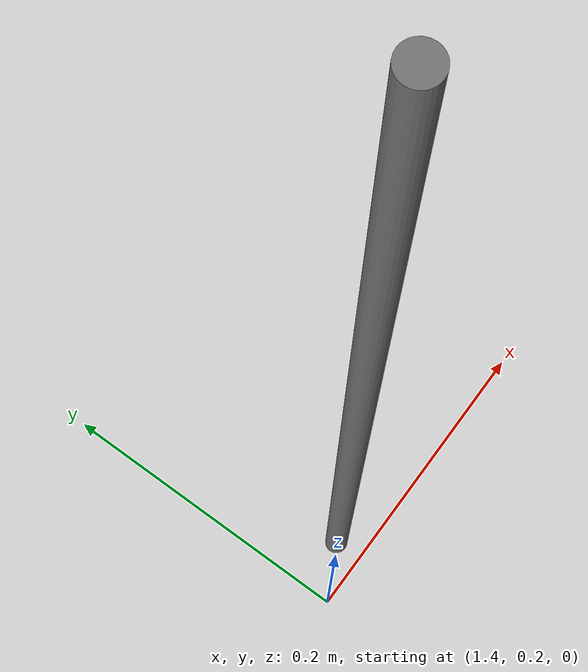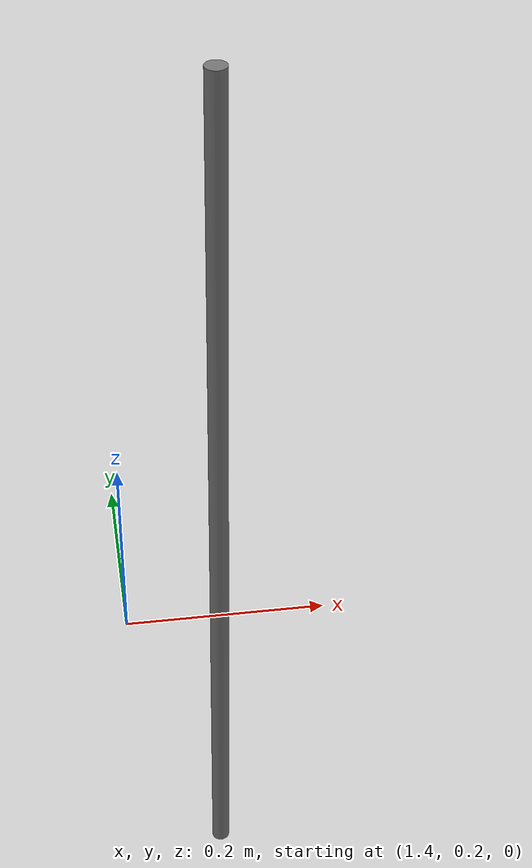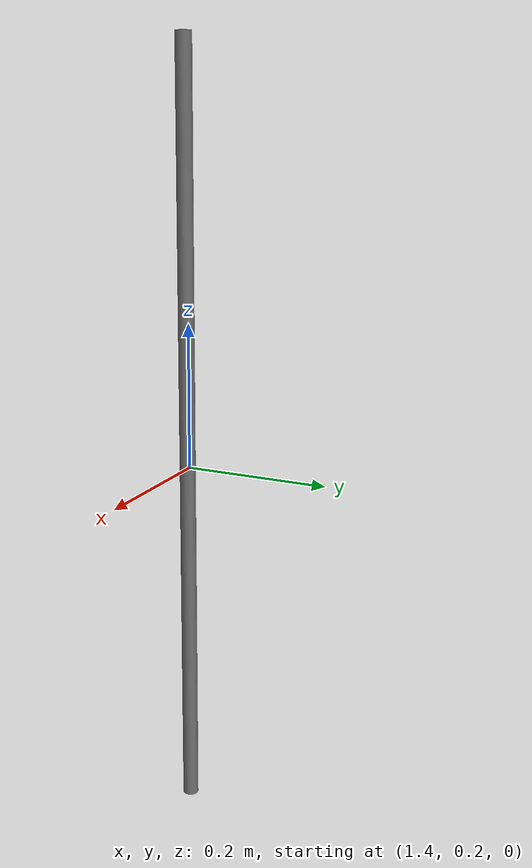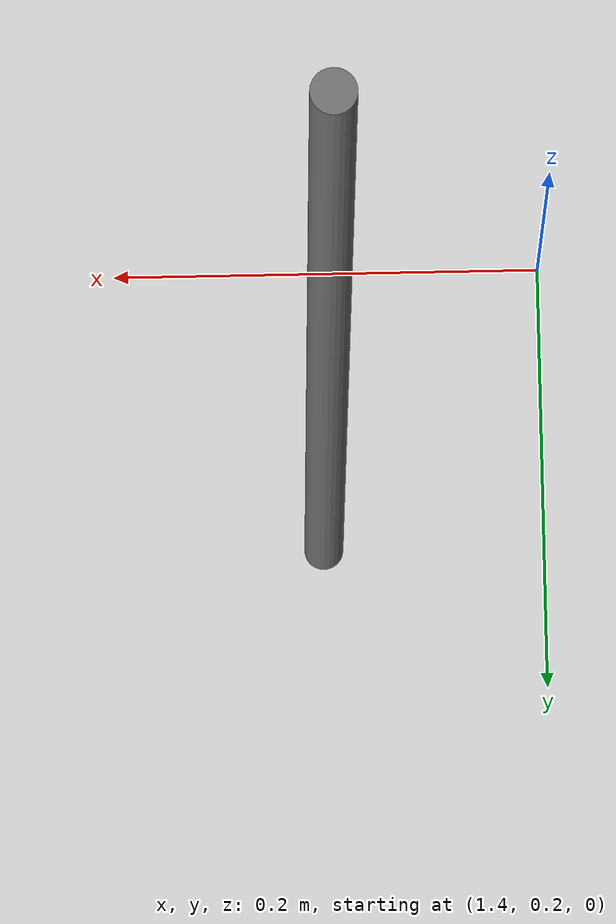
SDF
<?xml version="1.0"?>
<sdf version="1.7">
  <model name="cable_0">
    <link name="cable_link">
      <pose>1.5 0.25 0.065 0 0 0</pose>
      <inertial>
        <mass>0.05</mass>
        <inertia>
          <ixx>0.0001</ixx>
          <iyy>0.0001</iyy>
          <izz>0.0001</izz>
        </inertia>
      </inertial>
      <collision name="col">
        <geometry>
          <cylinder>
            <radius>0.01</radius>
            <length>1.0</length>
          </cylinder>
        </geometry>
      </collision>
      <visual name="vis">
        <geometry>
          <cylinder>
            <radius>0.01</radius>
            <length>1.0</length>
          </cylinder>
        </geometry>
        <material>
          <ambient>0.2 0.2 0.2 1</ambient>
          <diffuse>0.45 0.45 0.45 1</diffuse>
        </material>
      </visual>
    </link>
  </model>
</sdf>
